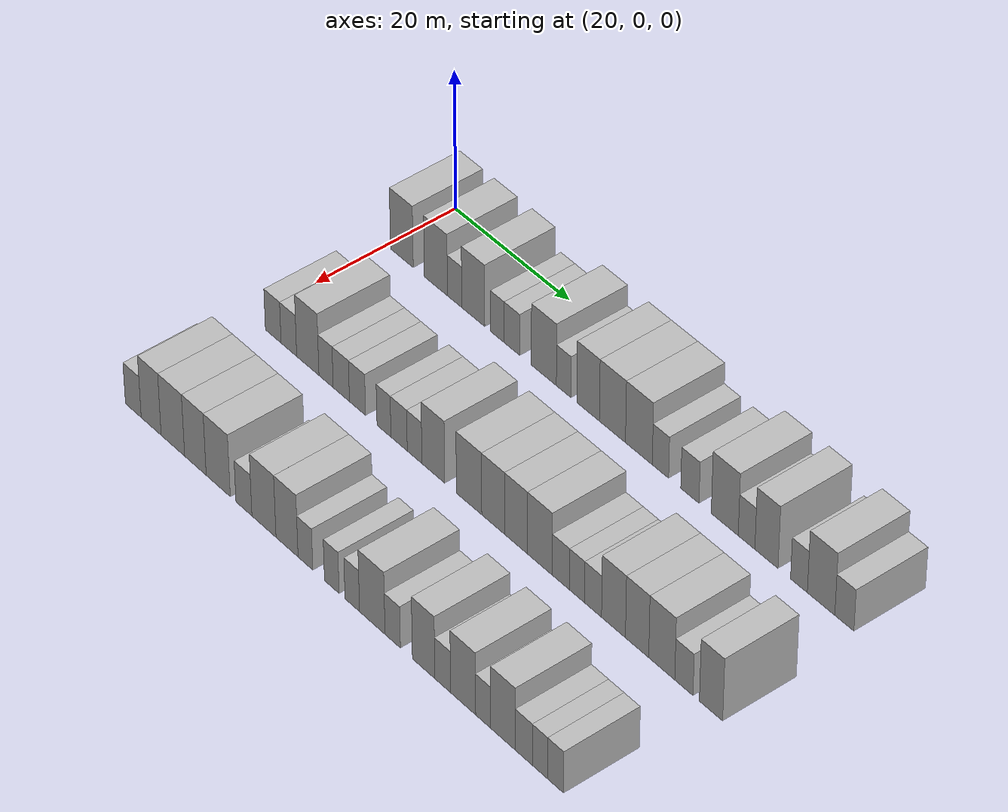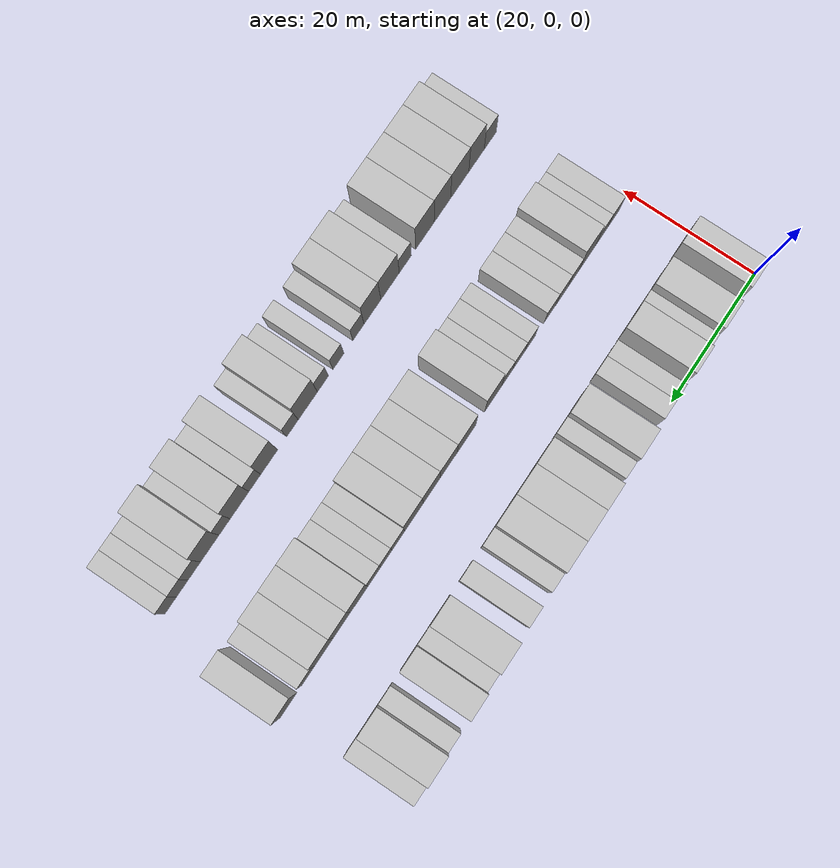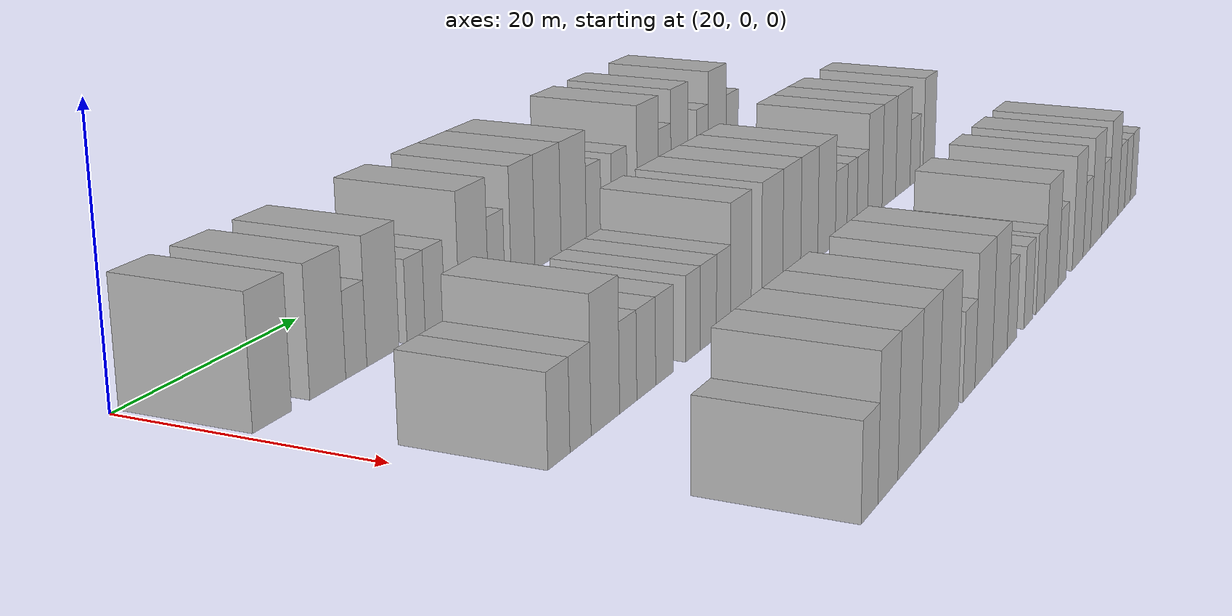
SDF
<sdf version="1.6">
 <world name="default">
  <model name="building_62">
   <static>1</static>
   <pose>25.0000 2.7764 0 0.000000 0.000000 0.000000</pose>
   <link name="link">
    <pose>0 0 4.50 0 0 0</pose>
    <collision name="collision"><geometry><box><size>10.0000 4.0758 9.0000</size></box></geometry></collision>
    <visual name="visual">
     <cast_shadows>0</cast_shadows>
     <geometry><box><size>10.0000 4.0758 9.0000</size></box></geometry>
     <material>
      <script>
       <uri>model://HANNAS_wall/materials/scripts</uri>
       <uri>model://HANNAS_wall/materials/textures</uri>
       <name>vrc/HANNAS_wall</name>
      </script>
     </material>
    </visual>
   </link>
  </model>
  <model name="building_63">
   <static>1</static>
   <pose>25.0000 8.8655 0 0.000000 0.000000 0.000000</pose>
   <link name="link">
    <pose>0 0 4.50 0 0 0</pose>
    <collision name="collision"><geometry><box><size>10.0000 4.1023 9.0000</size></box></geometry></collision>
    <visual name="visual">
     <cast_shadows>0</cast_shadows>
     <geometry><box><size>10.0000 4.1023 9.0000</size></box></geometry>
     <material>
      <script>
       <uri>model://HANNAS_wall/materials/scripts</uri>
       <uri>model://HANNAS_wall/materials/textures</uri>
       <name>vrc/HANNAS_wall</name>
      </script>
     </material>
    </visual>
   </link>
  </model>
  <model name="building_64">
   <static>1</static>
   <pose>25.0000 12.1791 0 0.000000 0.000000 0.000000</pose>
   <link name="link">
    <pose>0 0 3.00 0 0 0</pose>
    <collision name="collision"><geometry><box><size>10.0000 2.5248 6.0000</size></box></geometry></collision>
    <visual name="visual">
     <cast_shadows>0</cast_shadows>
     <geometry><box><size>10.0000 2.5248 6.0000</size></box></geometry>
     <material>
      <script>
       <uri>model://HANNAS_wall/materials/scripts</uri>
       <uri>model://HANNAS_wall/materials/textures</uri>
       <name>vrc/HANNAS_wall</name>
      </script>
     </material>
    </visual>
   </link>
  </model>
  <model name="building_65">
   <static>1</static>
   <pose>25.0000 15.4568 0 0.000000 0.000000 0.000000</pose>
   <link name="link">
    <pose>0 0 4.50 0 0 0</pose>
    <collision name="collision"><geometry><box><size>10.0000 4.0306 9.0000</size></box></geometry></collision>
    <visual name="visual">
     <cast_shadows>0</cast_shadows>
     <geometry><box><size>10.0000 4.0306 9.0000</size></box></geometry>
     <material>
      <script>
       <uri>model://HANNAS_wall/materials/scripts</uri>
       <uri>model://HANNAS_wall/materials/textures</uri>
       <name>vrc/HANNAS_wall</name>
      </script>
     </material>
    </visual>
   </link>
  </model>
  <model name="building_66">
   <static>1</static>
   <pose>25.0000 19.6749 0 0.000000 0.000000 0.000000</pose>
   <link name="link">
    <pose>0 0 3.00 0 0 0</pose>
    <collision name="collision"><geometry><box><size>10.0000 2.4056 6.0000</size></box></geometry></collision>
    <visual name="visual">
     <cast_shadows>0</cast_shadows>
     <geometry><box><size>10.0000 2.4056 6.0000</size></box></geometry>
     <material>
      <script>
       <uri>model://HANNAS_wall/materials/scripts</uri>
       <uri>model://HANNAS_wall/materials/textures</uri>
       <name>vrc/HANNAS_wall</name>
      </script>
     </material>
    </visual>
   </link>
  </model>
  <model name="building_67">
   <static>1</static>
   <pose>25.0000 22.2227 0 0.000000 0.000000 0.000000</pose>
   <link name="link">
    <pose>0 0 3.00 0 0 0</pose>
    <collision name="collision"><geometry><box><size>10.0000 2.6901 6.0000</size></box></geometry></collision>
    <visual name="visual">
     <cast_shadows>0</cast_shadows>
     <geometry><box><size>10.0000 2.6901 6.0000</size></box></geometry>
     <material>
      <script>
       <uri>model://HANNAS_wall/materials/scripts</uri>
       <uri>model://HANNAS_wall/materials/textures</uri>
       <name>vrc/HANNAS_wall</name>
      </script>
     </material>
    </visual>
   </link>
  </model>
  <model name="building_68">
   <static>1</static>
   <pose>25.0000 27.7084 0 0.000000 0.000000 0.000000</pose>
   <link name="link">
    <pose>0 0 4.50 0 0 0</pose>
    <collision name="collision"><geometry><box><size>10.0000 4.2813 9.0000</size></box></geometry></collision>
    <visual name="visual">
     <cast_shadows>0</cast_shadows>
     <geometry><box><size>10.0000 4.2813 9.0000</size></box></geometry>
     <material>
      <script>
       <uri>model://HANNAS_wall/materials/scripts</uri>
       <uri>model://HANNAS_wall/materials/textures</uri>
       <name>vrc/HANNAS_wall</name>
      </script>
     </material>
    </visual>
   </link>
  </model>
  <model name="building_69">
   <static>1</static>
   <pose>25.0000 31.0957 0 0.000000 0.000000 0.000000</pose>
   <link name="link">
    <pose>0 0 3.00 0 0 0</pose>
    <collision name="collision"><geometry><box><size>10.0000 2.4934 6.0000</size></box></geometry></collision>
    <visual name="visual">
     <cast_shadows>0</cast_shadows>
     <geometry><box><size>10.0000 2.4934 6.0000</size></box></geometry>
     <material>
      <script>
       <uri>model://HANNAS_wall/materials/scripts</uri>
       <uri>model://HANNAS_wall/materials/textures</uri>
       <name>vrc/HANNAS_wall</name>
      </script>
     </material>
    </visual>
   </link>
  </model>
  <model name="building_70">
   <static>1</static>
   <pose>25.0000 35.2474 0 0.000000 0.000000 0.000000</pose>
   <link name="link">
    <pose>0 0 4.50 0 0 0</pose>
    <collision name="collision"><geometry><box><size>10.0000 3.8100 9.0000</size></box></geometry></collision>
    <visual name="visual">
     <cast_shadows>0</cast_shadows>
     <geometry><box><size>10.0000 3.8100 9.0000</size></box></geometry>
     <material>
      <script>
       <uri>model://HANNAS_wall/materials/scripts</uri>
       <uri>model://HANNAS_wall/materials/textures</uri>
       <name>vrc/HANNAS_wall</name>
      </script>
     </material>
    </visual>
   </link>
  </model>
  <model name="building_71">
   <static>1</static>
   <pose>25.0000 39.3459 0 0.000000 0.000000 0.000000</pose>
   <link name="link">
    <pose>0 0 4.50 0 0 0</pose>
    <collision name="collision"><geometry><box><size>10.0000 4.3869 9.0000</size></box></geometry></collision>
    <visual name="visual">
     <cast_shadows>0</cast_shadows>
     <geometry><box><size>10.0000 4.3869 9.0000</size></box></geometry>
     <material>
      <script>
       <uri>model://HANNAS_wall/materials/scripts</uri>
       <uri>model://HANNAS_wall/materials/textures</uri>
       <name>vrc/HANNAS_wall</name>
      </script>
     </material>
    </visual>
   </link>
  </model>
  <model name="building_72">
   <static>1</static>
   <pose>25.0000 43.7689 0 0.000000 0.000000 0.000000</pose>
   <link name="link">
    <pose>0 0 4.50 0 0 0</pose>
    <collision name="collision"><geometry><box><size>10.0000 4.4592 9.0000</size></box></geometry></collision>
    <visual name="visual">
     <cast_shadows>0</cast_shadows>
     <geometry><box><size>10.0000 4.4592 9.0000</size></box></geometry>
     <material>
      <script>
       <uri>model://HANNAS_wall/materials/scripts</uri>
       <uri>model://HANNAS_wall/materials/textures</uri>
       <name>vrc/HANNAS_wall</name>
      </script>
     </material>
    </visual>
   </link>
  </model>
  <model name="building_73">
   <static>1</static>
   <pose>25.0000 47.3515 0 0.000000 0.000000 0.000000</pose>
   <link name="link">
    <pose>0 0 3.00 0 0 0</pose>
    <collision name="collision"><geometry><box><size>10.0000 2.7061 6.0000</size></box></geometry></collision>
    <visual name="visual">
     <cast_shadows>0</cast_shadows>
     <geometry><box><size>10.0000 2.7061 6.0000</size></box></geometry>
     <material>
      <script>
       <uri>model://HANNAS_wall/materials/scripts</uri>
       <uri>model://HANNAS_wall/materials/textures</uri>
       <name>vrc/HANNAS_wall</name>
      </script>
     </material>
    </visual>
   </link>
  </model>
  <model name="building_74">
   <static>1</static>
   <pose>25.0000 52.1998 0 0.000000 0.000000 0.000000</pose>
   <link name="link">
    <pose>0 0 3.00 0 0 0</pose>
    <collision name="collision"><geometry><box><size>10.0000 2.9904 6.0000</size></box></geometry></collision>
    <visual name="visual">
     <cast_shadows>0</cast_shadows>
     <geometry><box><size>10.0000 2.9904 6.0000</size></box></geometry>
     <material>
      <script>
       <uri>model://HANNAS_wall/materials/scripts</uri>
       <uri>model://HANNAS_wall/materials/textures</uri>
       <name>vrc/HANNAS_wall</name>
      </script>
     </material>
    </visual>
   </link>
  </model>
  <model name="building_75">
   <static>1</static>
   <pose>25.0000 57.8810 0 0.000000 0.000000 0.000000</pose>
   <link name="link">
    <pose>0 0 4.50 0 0 0</pose>
    <collision name="collision"><geometry><box><size>10.0000 4.3721 9.0000</size></box></geometry></collision>
    <visual name="visual">
     <cast_shadows>0</cast_shadows>
     <geometry><box><size>10.0000 4.3721 9.0000</size></box></geometry>
     <material>
      <script>
       <uri>model://HANNAS_wall/materials/scripts</uri>
       <uri>model://HANNAS_wall/materials/textures</uri>
       <name>vrc/HANNAS_wall</name>
      </script>
     </material>
    </visual>
   </link>
  </model>
  <model name="building_76">
   <static>1</static>
   <pose>25.0000 61.4075 0 0.000000 0.000000 0.000000</pose>
   <link name="link">
    <pose>0 0 3.00 0 0 0</pose>
    <collision name="collision"><geometry><box><size>10.0000 2.6810 6.0000</size></box></geometry></collision>
    <visual name="visual">
     <cast_shadows>0</cast_shadows>
     <geometry><box><size>10.0000 2.6810 6.0000</size></box></geometry>
     <material>
      <script>
       <uri>model://HANNAS_wall/materials/scripts</uri>
       <uri>model://HANNAS_wall/materials/textures</uri>
       <name>vrc/HANNAS_wall</name>
      </script>
     </material>
    </visual>
   </link>
  </model>
  <model name="building_77">
   <static>1</static>
   <pose>25.0000 64.5982 0 0.000000 0.000000 0.000000</pose>
   <link name="link">
    <pose>0 0 4.50 0 0 0</pose>
    <collision name="collision"><geometry><box><size>10.0000 3.7004 9.0000</size></box></geometry></collision>
    <visual name="visual">
     <cast_shadows>0</cast_shadows>
     <geometry><box><size>10.0000 3.7004 9.0000</size></box></geometry>
     <material>
      <script>
       <uri>model://HANNAS_wall/materials/scripts</uri>
       <uri>model://HANNAS_wall/materials/textures</uri>
       <name>vrc/HANNAS_wall</name>
      </script>
     </material>
    </visual>
   </link>
  </model>
  <model name="building_78">
   <static>1</static>
   <pose>25.0000 69.7777 0 0.000000 0.000000 0.000000</pose>
   <link name="link">
    <pose>0 0 3.00 0 0 0</pose>
    <collision name="collision"><geometry><box><size>10.0000 2.6587 6.0000</size></box></geometry></collision>
    <visual name="visual">
     <cast_shadows>0</cast_shadows>
     <geometry><box><size>10.0000 2.6587 6.0000</size></box></geometry>
     <material>
      <script>
       <uri>model://HANNAS_wall/materials/scripts</uri>
       <uri>model://HANNAS_wall/materials/textures</uri>
       <name>vrc/HANNAS_wall</name>
      </script>
     </material>
    </visual>
   </link>
  </model>
  <model name="building_79">
   <static>1</static>
   <pose>25.0000 73.2680 0 0.000000 0.000000 0.000000</pose>
   <link name="link">
    <pose>0 0 4.50 0 0 0</pose>
    <collision name="collision"><geometry><box><size>10.0000 4.3219 9.0000</size></box></geometry></collision>
    <visual name="visual">
     <cast_shadows>0</cast_shadows>
     <geometry><box><size>10.0000 4.3219 9.0000</size></box></geometry>
     <material>
      <script>
       <uri>model://HANNAS_wall/materials/scripts</uri>
       <uri>model://HANNAS_wall/materials/textures</uri>
       <name>vrc/HANNAS_wall</name>
      </script>
     </material>
    </visual>
   </link>
  </model>
  <model name="building_80">
   <static>1</static>
   <pose>25.0000 76.9229 0 0.000000 0.000000 0.000000</pose>
   <link name="link">
    <pose>0 0 3.00 0 0 0</pose>
    <collision name="collision"><geometry><box><size>10.0000 2.9879 6.0000</size></box></geometry></collision>
    <visual name="visual">
     <cast_shadows>0</cast_shadows>
     <geometry><box><size>10.0000 2.9879 6.0000</size></box></geometry>
     <material>
      <script>
       <uri>model://HANNAS_wall/materials/scripts</uri>
       <uri>model://HANNAS_wall/materials/textures</uri>
       <name>vrc/HANNAS_wall</name>
      </script>
     </material>
    </visual>
   </link>
  </model>
  <model name="building_186">
   <static>1</static>
   <pose>44.0000 4.0510 0 0.000000 0.000000 0.000000</pose>
   <link name="link">
    <pose>0 0 3.00 0 0 0</pose>
    <collision name="collision"><geometry><box><size>10.0000 2.8235 6.0000</size></box></geometry></collision>
    <visual name="visual">
     <cast_shadows>0</cast_shadows>
     <geometry><box><size>10.0000 2.8235 6.0000</size></box></geometry>
     <material>
      <script>
       <uri>model://HANNAS_wall/materials/scripts</uri>
       <uri>model://HANNAS_wall/materials/textures</uri>
       <name>vrc/HANNAS_wall</name>
      </script>
     </material>
    </visual>
   </link>
  </model>
  <model name="building_187">
   <static>1</static>
   <pose>44.0000 6.8663 0 0.000000 0.000000 0.000000</pose>
   <link name="link">
    <pose>0 0 3.00 0 0 0</pose>
    <collision name="collision"><geometry><box><size>10.0000 2.8071 6.0000</size></box></geometry></collision>
    <visual name="visual">
     <cast_shadows>0</cast_shadows>
     <geometry><box><size>10.0000 2.8071 6.0000</size></box></geometry>
     <material>
      <script>
       <uri>model://HANNAS_wall/materials/scripts</uri>
       <uri>model://HANNAS_wall/materials/textures</uri>
       <name>vrc/HANNAS_wall</name>
      </script>
     </material>
    </visual>
   </link>
  </model>
  <model name="building_188">
   <static>1</static>
   <pose>44.0000 10.2616 0 0.000000 0.000000 0.000000</pose>
   <link name="link">
    <pose>0 0 4.50 0 0 0</pose>
    <collision name="collision"><geometry><box><size>10.0000 3.9836 9.0000</size></box></geometry></collision>
    <visual name="visual">
     <cast_shadows>0</cast_shadows>
     <geometry><box><size>10.0000 3.9836 9.0000</size></box></geometry>
     <material>
      <script>
       <uri>model://HANNAS_wall/materials/scripts</uri>
       <uri>model://HANNAS_wall/materials/textures</uri>
       <name>vrc/HANNAS_wall</name>
      </script>
     </material>
    </visual>
   </link>
  </model>
  <model name="building_189">
   <static>1</static>
   <pose>44.0000 13.5170 0 0.000000 0.000000 0.000000</pose>
   <link name="link">
    <pose>0 0 3.00 0 0 0</pose>
    <collision name="collision"><geometry><box><size>10.0000 2.5271 6.0000</size></box></geometry></collision>
    <visual name="visual">
     <cast_shadows>0</cast_shadows>
     <geometry><box><size>10.0000 2.5271 6.0000</size></box></geometry>
     <material>
      <script>
       <uri>model://HANNAS_wall/materials/scripts</uri>
       <uri>model://HANNAS_wall/materials/textures</uri>
       <name>vrc/HANNAS_wall</name>
      </script>
     </material>
    </visual>
   </link>
  </model>
  <model name="building_190">
   <static>1</static>
   <pose>44.0000 16.2181 0 0.000000 0.000000 0.000000</pose>
   <link name="link">
    <pose>0 0 3.00 0 0 0</pose>
    <collision name="collision"><geometry><box><size>10.0000 2.8750 6.0000</size></box></geometry></collision>
    <visual name="visual">
     <cast_shadows>0</cast_shadows>
     <geometry><box><size>10.0000 2.8750 6.0000</size></box></geometry>
     <material>
      <script>
       <uri>model://HANNAS_wall/materials/scripts</uri>
       <uri>model://HANNAS_wall/materials/textures</uri>
       <name>vrc/HANNAS_wall</name>
      </script>
     </material>
    </visual>
   </link>
  </model>
  <model name="building_191">
   <static>1</static>
   <pose>44.0000 19.0745 0 0.000000 0.000000 0.000000</pose>
   <link name="link">
    <pose>0 0 3.00 0 0 0</pose>
    <collision name="collision"><geometry><box><size>10.0000 2.8378 6.0000</size></box></geometry></collision>
    <visual name="visual">
     <cast_shadows>0</cast_shadows>
     <geometry><box><size>10.0000 2.8378 6.0000</size></box></geometry>
     <material>
      <script>
       <uri>model://HANNAS_wall/materials/scripts</uri>
       <uri>model://HANNAS_wall/materials/textures</uri>
       <name>vrc/HANNAS_wall</name>
      </script>
     </material>
    </visual>
   </link>
  </model>
  <model name="building_192">
   <static>1</static>
   <pose>44.0000 23.7093 0 0.000000 0.000000 0.000000</pose>
   <link name="link">
    <pose>0 0 3.00 0 0 0</pose>
    <collision name="collision"><geometry><box><size>10.0000 2.4318 6.0000</size></box></geometry></collision>
    <visual name="visual">
     <cast_shadows>0</cast_shadows>
     <geometry><box><size>10.0000 2.4318 6.0000</size></box></geometry>
     <material>
      <script>
       <uri>model://HANNAS_wall/materials/scripts</uri>
       <uri>model://HANNAS_wall/materials/textures</uri>
       <name>vrc/HANNAS_wall</name>
      </script>
     </material>
    </visual>
   </link>
  </model>
  <model name="building_193">
   <static>1</static>
   <pose>44.0000 26.3381 0 0.000000 0.000000 0.000000</pose>
   <link name="link">
    <pose>0 0 3.00 0 0 0</pose>
    <collision name="collision"><geometry><box><size>10.0000 2.8258 6.0000</size></box></geometry></collision>
    <visual name="visual">
     <cast_shadows>0</cast_shadows>
     <geometry><box><size>10.0000 2.8258 6.0000</size></box></geometry>
     <material>
      <script>
       <uri>model://HANNAS_wall/materials/scripts</uri>
       <uri>model://HANNAS_wall/materials/textures</uri>
       <name>vrc/HANNAS_wall</name>
      </script>
     </material>
    </visual>
   </link>
  </model>
  <model name="building_194">
   <static>1</static>
   <pose>44.0000 29.0210 0 0.000000 0.000000 0.000000</pose>
   <link name="link">
    <pose>0 0 3.00 0 0 0</pose>
    <collision name="collision"><geometry><box><size>10.0000 2.5401 6.0000</size></box></geometry></collision>
    <visual name="visual">
     <cast_shadows>0</cast_shadows>
     <geometry><box><size>10.0000 2.5401 6.0000</size></box></geometry>
     <material>
      <script>
       <uri>model://HANNAS_wall/materials/scripts</uri>
       <uri>model://HANNAS_wall/materials/textures</uri>
       <name>vrc/HANNAS_wall</name>
      </script>
     </material>
    </visual>
   </link>
  </model>
  <model name="building_195">
   <static>1</static>
   <pose>44.0000 32.2441 0 0.000000 0.000000 0.000000</pose>
   <link name="link">
    <pose>0 0 4.50 0 0 0</pose>
    <collision name="collision"><geometry><box><size>10.0000 3.9061 9.0000</size></box></geometry></collision>
    <visual name="visual">
     <cast_shadows>0</cast_shadows>
     <geometry><box><size>10.0000 3.9061 9.0000</size></box></geometry>
     <material>
      <script>
       <uri>model://HANNAS_wall/materials/scripts</uri>
       <uri>model://HANNAS_wall/materials/textures</uri>
       <name>vrc/HANNAS_wall</name>
      </script>
     </material>
    </visual>
   </link>
  </model>
  <model name="building_196">
   <static>1</static>
   <pose>44.0000 38.3375 0 0.000000 0.000000 0.000000</pose>
   <link name="link">
    <pose>0 0 4.50 0 0 0</pose>
    <collision name="collision"><geometry><box><size>10.0000 4.2806 9.0000</size></box></geometry></collision>
    <visual name="visual">
     <cast_shadows>0</cast_shadows>
     <geometry><box><size>10.0000 4.2806 9.0000</size></box></geometry>
     <material>
      <script>
       <uri>model://HANNAS_wall/materials/scripts</uri>
       <uri>model://HANNAS_wall/materials/textures</uri>
       <name>vrc/HANNAS_wall</name>
      </script>
     </material>
    </visual>
   </link>
  </model>
  <model name="building_197">
   <static>1</static>
   <pose>44.0000 42.4011 0 0.000000 0.000000 0.000000</pose>
   <link name="link">
    <pose>0 0 4.50 0 0 0</pose>
    <collision name="collision"><geometry><box><size>10.0000 3.8466 9.0000</size></box></geometry></collision>
    <visual name="visual">
     <cast_shadows>0</cast_shadows>
     <geometry><box><size>10.0000 3.8466 9.0000</size></box></geometry>
     <material>
      <script>
       <uri>model://HANNAS_wall/materials/scripts</uri>
       <uri>model://HANNAS_wall/materials/textures</uri>
       <name>vrc/HANNAS_wall</name>
      </script>
     </material>
    </visual>
   </link>
  </model>
  <model name="building_198">
   <static>1</static>
   <pose>44.0000 46.2321 0 0.000000 0.000000 0.000000</pose>
   <link name="link">
    <pose>0 0 4.50 0 0 0</pose>
    <collision name="collision"><geometry><box><size>10.0000 3.8154 9.0000</size></box></geometry></collision>
    <visual name="visual">
     <cast_shadows>0</cast_shadows>
     <geometry><box><size>10.0000 3.8154 9.0000</size></box></geometry>
     <material>
      <script>
       <uri>model://HANNAS_wall/materials/scripts</uri>
       <uri>model://HANNAS_wall/materials/textures</uri>
       <name>vrc/HANNAS_wall</name>
      </script>
     </material>
    </visual>
   </link>
  </model>
  <model name="building_199">
   <static>1</static>
   <pose>44.0000 50.1903 0 0.000000 0.000000 0.000000</pose>
   <link name="link">
    <pose>0 0 4.50 0 0 0</pose>
    <collision name="collision"><geometry><box><size>10.0000 4.1008 9.0000</size></box></geometry></collision>
    <visual name="visual">
     <cast_shadows>0</cast_shadows>
     <geometry><box><size>10.0000 4.1008 9.0000</size></box></geometry>
     <material>
      <script>
       <uri>model://HANNAS_wall/materials/scripts</uri>
       <uri>model://HANNAS_wall/materials/textures</uri>
       <name>vrc/HANNAS_wall</name>
      </script>
     </material>
    </visual>
   </link>
  </model>
  <model name="building_200">
   <static>1</static>
   <pose>44.0000 53.6527 0 0.000000 0.000000 0.000000</pose>
   <link name="link">
    <pose>0 0 3.00 0 0 0</pose>
    <collision name="collision"><geometry><box><size>10.0000 2.8241 6.0000</size></box></geometry></collision>
    <visual name="visual">
     <cast_shadows>0</cast_shadows>
     <geometry><box><size>10.0000 2.8241 6.0000</size></box></geometry>
     <material>
      <script>
       <uri>model://HANNAS_wall/materials/scripts</uri>
       <uri>model://HANNAS_wall/materials/textures</uri>
       <name>vrc/HANNAS_wall</name>
      </script>
     </material>
    </visual>
   </link>
  </model>
  <model name="building_201">
   <static>1</static>
   <pose>44.0000 56.2952 0 0.000000 0.000000 0.000000</pose>
   <link name="link">
    <pose>0 0 3.00 0 0 0</pose>
    <collision name="collision"><geometry><box><size>10.0000 2.4609 6.0000</size></box></geometry></collision>
    <visual name="visual">
     <cast_shadows>0</cast_shadows>
     <geometry><box><size>10.0000 2.4609 6.0000</size></box></geometry>
     <material>
      <script>
       <uri>model://HANNAS_wall/materials/scripts</uri>
       <uri>model://HANNAS_wall/materials/textures</uri>
       <name>vrc/HANNAS_wall</name>
      </script>
     </material>
    </visual>
   </link>
  </model>
  <model name="building_202">
   <static>1</static>
   <pose>44.0000 58.9181 0 0.000000 0.000000 0.000000</pose>
   <link name="link">
    <pose>0 0 3.00 0 0 0</pose>
    <collision name="collision"><geometry><box><size>10.0000 2.7849 6.0000</size></box></geometry></collision>
    <visual name="visual">
     <cast_shadows>0</cast_shadows>
     <geometry><box><size>10.0000 2.7849 6.0000</size></box></geometry>
     <material>
      <script>
       <uri>model://HANNAS_wall/materials/scripts</uri>
       <uri>model://HANNAS_wall/materials/textures</uri>
       <name>vrc/HANNAS_wall</name>
      </script>
     </material>
    </visual>
   </link>
  </model>
  <model name="building_203">
   <static>1</static>
   <pose>44.0000 62.2452 0 0.000000 0.000000 0.000000</pose>
   <link name="link">
    <pose>0 0 4.50 0 0 0</pose>
    <collision name="collision"><geometry><box><size>10.0000 3.8692 9.0000</size></box></geometry></collision>
    <visual name="visual">
     <cast_shadows>0</cast_shadows>
     <geometry><box><size>10.0000 3.8692 9.0000</size></box></geometry>
     <material>
      <script>
       <uri>model://HANNAS_wall/materials/scripts</uri>
       <uri>model://HANNAS_wall/materials/textures</uri>
       <name>vrc/HANNAS_wall</name>
      </script>
     </material>
    </visual>
   </link>
  </model>
  <model name="building_204">
   <static>1</static>
   <pose>44.0000 66.0478 0 0.000000 0.000000 0.000000</pose>
   <link name="link">
    <pose>0 0 4.50 0 0 0</pose>
    <collision name="collision"><geometry><box><size>10.0000 3.7361 9.0000</size></box></geometry></collision>
    <visual name="visual">
     <cast_shadows>0</cast_shadows>
     <geometry><box><size>10.0000 3.7361 9.0000</size></box></geometry>
     <material>
      <script>
       <uri>model://HANNAS_wall/materials/scripts</uri>
       <uri>model://HANNAS_wall/materials/textures</uri>
       <name>vrc/HANNAS_wall</name>
      </script>
     </material>
    </visual>
   </link>
  </model>
  <model name="building_205">
   <static>1</static>
   <pose>44.0000 69.9916 0 0.000000 0.000000 0.000000</pose>
   <link name="link">
    <pose>0 0 4.50 0 0 0</pose>
    <collision name="collision"><geometry><box><size>10.0000 4.1514 9.0000</size></box></geometry></collision>
    <visual name="visual">
     <cast_shadows>0</cast_shadows>
     <geometry><box><size>10.0000 4.1514 9.0000</size></box></geometry>
     <material>
      <script>
       <uri>model://HANNAS_wall/materials/scripts</uri>
       <uri>model://HANNAS_wall/materials/textures</uri>
       <name>vrc/HANNAS_wall</name>
      </script>
     </material>
    </visual>
   </link>
  </model>
  <model name="building_206">
   <static>1</static>
   <pose>44.0000 73.5142 0 0.000000 0.000000 0.000000</pose>
   <link name="link">
    <pose>0 0 3.00 0 0 0</pose>
    <collision name="collision"><geometry><box><size>10.0000 2.8937 6.0000</size></box></geometry></collision>
    <visual name="visual">
     <cast_shadows>0</cast_shadows>
     <geometry><box><size>10.0000 2.8937 6.0000</size></box></geometry>
     <material>
      <script>
       <uri>model://HANNAS_wall/materials/scripts</uri>
       <uri>model://HANNAS_wall/materials/textures</uri>
       <name>vrc/HANNAS_wall</name>
      </script>
     </material>
    </visual>
   </link>
  </model>
  <model name="building_207">
   <static>1</static>
   <pose>44.0000 77.7868 0 0.000000 0.000000 0.000000</pose>
   <link name="link">
    <pose>0 0 4.50 0 0 0</pose>
    <collision name="collision"><geometry><box><size>10.0000 3.6514 9.0000</size></box></geometry></collision>
    <visual name="visual">
     <cast_shadows>0</cast_shadows>
     <geometry><box><size>10.0000 3.6514 9.0000</size></box></geometry>
     <material>
      <script>
       <uri>model://HANNAS_wall/materials/scripts</uri>
       <uri>model://HANNAS_wall/materials/textures</uri>
       <name>vrc/HANNAS_wall</name>
      </script>
     </material>
    </visual>
   </link>
  </model>
  <model name="building_314">
   <static>1</static>
   <pose>63.0000 4.0176 0 0.000000 0.000000 0.000000</pose>
   <link name="link">
    <pose>0 0 3.00 0 0 0</pose>
    <collision name="collision"><geometry><box><size>10.0000 2.8701 6.0000</size></box></geometry></collision>
    <visual name="visual">
     <cast_shadows>0</cast_shadows>
     <geometry><box><size>10.0000 2.8701 6.0000</size></box></geometry>
     <material>
      <script>
       <uri>model://HANNAS_wall/materials/scripts</uri>
       <uri>model://HANNAS_wall/materials/textures</uri>
       <name>vrc/HANNAS_wall</name>
      </script>
     </material>
    </visual>
   </link>
  </model>
  <model name="building_315">
   <static>1</static>
   <pose>63.0000 7.2606 0 0.000000 0.000000 0.000000</pose>
   <link name="link">
    <pose>0 0 4.50 0 0 0</pose>
    <collision name="collision"><geometry><box><size>10.0000 3.6160 9.0000</size></box></geometry></collision>
    <visual name="visual">
     <cast_shadows>0</cast_shadows>
     <geometry><box><size>10.0000 3.6160 9.0000</size></box></geometry>
     <material>
      <script>
       <uri>model://HANNAS_wall/materials/scripts</uri>
       <uri>model://HANNAS_wall/materials/textures</uri>
       <name>vrc/HANNAS_wall</name>
      </script>
     </material>
    </visual>
   </link>
  </model>
  <model name="building_316">
   <static>1</static>
   <pose>63.0000 11.1840 0 0.000000 0.000000 0.000000</pose>
   <link name="link">
    <pose>0 0 4.50 0 0 0</pose>
    <collision name="collision"><geometry><box><size>10.0000 4.2306 9.0000</size></box></geometry></collision>
    <visual name="visual">
     <cast_shadows>0</cast_shadows>
     <geometry><box><size>10.0000 4.2306 9.0000</size></box></geometry>
     <material>
      <script>
       <uri>model://HANNAS_wall/materials/scripts</uri>
       <uri>model://HANNAS_wall/materials/textures</uri>
       <name>vrc/HANNAS_wall</name>
      </script>
     </material>
    </visual>
   </link>
  </model>
  <model name="building_317">
   <static>1</static>
   <pose>63.0000 15.2242 0 0.000000 0.000000 0.000000</pose>
   <link name="link">
    <pose>0 0 4.50 0 0 0</pose>
    <collision name="collision"><geometry><box><size>10.0000 3.8499 9.0000</size></box></geometry></collision>
    <visual name="visual">
     <cast_shadows>0</cast_shadows>
     <geometry><box><size>10.0000 3.8499 9.0000</size></box></geometry>
     <material>
      <script>
       <uri>model://HANNAS_wall/materials/scripts</uri>
       <uri>model://HANNAS_wall/materials/textures</uri>
       <name>vrc/HANNAS_wall</name>
      </script>
     </material>
    </visual>
   </link>
  </model>
  <model name="building_318">
   <static>1</static>
   <pose>63.0000 19.2848 0 0.000000 0.000000 0.000000</pose>
   <link name="link">
    <pose>0 0 4.50 0 0 0</pose>
    <collision name="collision"><geometry><box><size>10.0000 4.2713 9.0000</size></box></geometry></collision>
    <visual name="visual">
     <cast_shadows>0</cast_shadows>
     <geometry><box><size>10.0000 4.2713 9.0000</size></box></geometry>
     <material>
      <script>
       <uri>model://HANNAS_wall/materials/scripts</uri>
       <uri>model://HANNAS_wall/materials/textures</uri>
       <name>vrc/HANNAS_wall</name>
      </script>
     </material>
    </visual>
   </link>
  </model>
  <model name="building_319">
   <static>1</static>
   <pose>63.0000 23.8218 0 0.000000 0.000000 0.000000</pose>
   <link name="link">
    <pose>0 0 3.00 0 0 0</pose>
    <collision name="collision"><geometry><box><size>10.0000 2.8026 6.0000</size></box></geometry></collision>
    <visual name="visual">
     <cast_shadows>0</cast_shadows>
     <geometry><box><size>10.0000 2.8026 6.0000</size></box></geometry>
     <material>
      <script>
       <uri>model://HANNAS_wall/materials/scripts</uri>
       <uri>model://HANNAS_wall/materials/textures</uri>
       <name>vrc/HANNAS_wall</name>
      </script>
     </material>
    </visual>
   </link>
  </model>
  <model name="building_320">
   <static>1</static>
   <pose>63.0000 27.3267 0 0.000000 0.000000 0.000000</pose>
   <link name="link">
    <pose>0 0 4.50 0 0 0</pose>
    <collision name="collision"><geometry><box><size>10.0000 4.2073 9.0000</size></box></geometry></collision>
    <visual name="visual">
     <cast_shadows>0</cast_shadows>
     <geometry><box><size>10.0000 4.2073 9.0000</size></box></geometry>
     <material>
      <script>
       <uri>model://HANNAS_wall/materials/scripts</uri>
       <uri>model://HANNAS_wall/materials/textures</uri>
       <name>vrc/HANNAS_wall</name>
      </script>
     </material>
    </visual>
   </link>
  </model>
  <model name="building_321">
   <static>1</static>
   <pose>63.0000 31.3395 0 0.000000 0.000000 0.000000</pose>
   <link name="link">
    <pose>0 0 4.50 0 0 0</pose>
    <collision name="collision"><geometry><box><size>10.0000 3.8182 9.0000</size></box></geometry></collision>
    <visual name="visual">
     <cast_shadows>0</cast_shadows>
     <geometry><box><size>10.0000 3.8182 9.0000</size></box></geometry>
     <material>
      <script>
       <uri>model://HANNAS_wall/materials/scripts</uri>
       <uri>model://HANNAS_wall/materials/textures</uri>
       <name>vrc/HANNAS_wall</name>
      </script>
     </material>
    </visual>
   </link>
  </model>
  <model name="building_322">
   <static>1</static>
   <pose>63.0000 34.5202 0 0.000000 0.000000 0.000000</pose>
   <link name="link">
    <pose>0 0 3.00 0 0 0</pose>
    <collision name="collision"><geometry><box><size>10.0000 2.5432 6.0000</size></box></geometry></collision>
    <visual name="visual">
     <cast_shadows>0</cast_shadows>
     <geometry><box><size>10.0000 2.5432 6.0000</size></box></geometry>
     <material>
      <script>
       <uri>model://HANNAS_wall/materials/scripts</uri>
       <uri>model://HANNAS_wall/materials/textures</uri>
       <name>vrc/HANNAS_wall</name>
      </script>
     </material>
    </visual>
   </link>
  </model>
  <model name="building_323">
   <static>1</static>
   <pose>63.0000 39.0403 0 0.000000 0.000000 0.000000</pose>
   <link name="link">
    <pose>0 0 3.00 0 0 0</pose>
    <collision name="collision"><geometry><box><size>10.0000 2.4970 6.0000</size></box></geometry></collision>
    <visual name="visual">
     <cast_shadows>0</cast_shadows>
     <geometry><box><size>10.0000 2.4970 6.0000</size></box></geometry>
     <material>
      <script>
       <uri>model://HANNAS_wall/materials/scripts</uri>
       <uri>model://HANNAS_wall/materials/textures</uri>
       <name>vrc/HANNAS_wall</name>
      </script>
     </material>
    </visual>
   </link>
  </model>
  <model name="building_324">
   <static>1</static>
   <pose>63.0000 42.5243 0 0.000000 0.000000 0.000000</pose>
   <link name="link">
    <pose>0 0 3.00 0 0 0</pose>
    <collision name="collision"><geometry><box><size>10.0000 2.4710 6.0000</size></box></geometry></collision>
    <visual name="visual">
     <cast_shadows>0</cast_shadows>
     <geometry><box><size>10.0000 2.4710 6.0000</size></box></geometry>
     <material>
      <script>
       <uri>model://HANNAS_wall/materials/scripts</uri>
       <uri>model://HANNAS_wall/materials/textures</uri>
       <name>vrc/HANNAS_wall</name>
      </script>
     </material>
    </visual>
   </link>
  </model>
  <model name="building_325">
   <static>1</static>
   <pose>63.0000 45.9037 0 0.000000 0.000000 0.000000</pose>
   <link name="link">
    <pose>0 0 4.50 0 0 0</pose>
    <collision name="collision"><geometry><box><size>10.0000 4.2879 9.0000</size></box></geometry></collision>
    <visual name="visual">
     <cast_shadows>0</cast_shadows>
     <geometry><box><size>10.0000 4.2879 9.0000</size></box></geometry>
     <material>
      <script>
       <uri>model://HANNAS_wall/materials/scripts</uri>
       <uri>model://HANNAS_wall/materials/textures</uri>
       <name>vrc/HANNAS_wall</name>
      </script>
     </material>
    </visual>
   </link>
  </model>
  <model name="building_326">
   <static>1</static>
   <pose>63.0000 49.3329 0 0.000000 0.000000 0.000000</pose>
   <link name="link">
    <pose>0 0 3.00 0 0 0</pose>
    <collision name="collision"><geometry><box><size>10.0000 2.5705 6.0000</size></box></geometry></collision>
    <visual name="visual">
     <cast_shadows>0</cast_shadows>
     <geometry><box><size>10.0000 2.5705 6.0000</size></box></geometry>
     <material>
      <script>
       <uri>model://HANNAS_wall/materials/scripts</uri>
       <uri>model://HANNAS_wall/materials/textures</uri>
       <name>vrc/HANNAS_wall</name>
      </script>
     </material>
    </visual>
   </link>
  </model>
  <model name="building_327">
   <static>1</static>
   <pose>63.0000 54.4818 0 0.000000 0.000000 0.000000</pose>
   <link name="link">
    <pose>0 0 4.50 0 0 0</pose>
    <collision name="collision"><geometry><box><size>10.0000 3.7273 9.0000</size></box></geometry></collision>
    <visual name="visual">
     <cast_shadows>0</cast_shadows>
     <geometry><box><size>10.0000 3.7273 9.0000</size></box></geometry>
     <material>
      <script>
       <uri>model://HANNAS_wall/materials/scripts</uri>
       <uri>model://HANNAS_wall/materials/textures</uri>
       <name>vrc/HANNAS_wall</name>
      </script>
     </material>
    </visual>
   </link>
  </model>
  <model name="building_328">
   <static>1</static>
   <pose>63.0000 57.6375 0 0.000000 0.000000 0.000000</pose>
   <link name="link">
    <pose>0 0 3.00 0 0 0</pose>
    <collision name="collision"><geometry><box><size>10.0000 2.5842 6.0000</size></box></geometry></collision>
    <visual name="visual">
     <cast_shadows>0</cast_shadows>
     <geometry><box><size>10.0000 2.5842 6.0000</size></box></geometry>
     <material>
      <script>
       <uri>model://HANNAS_wall/materials/scripts</uri>
       <uri>model://HANNAS_wall/materials/textures</uri>
       <name>vrc/HANNAS_wall</name>
      </script>
     </material>
    </visual>
   </link>
  </model>
  <model name="building_329">
   <static>1</static>
   <pose>63.0000 60.9789 0 0.000000 0.000000 0.000000</pose>
   <link name="link">
    <pose>0 0 4.50 0 0 0</pose>
    <collision name="collision"><geometry><box><size>10.0000 4.0987 9.0000</size></box></geometry></collision>
    <visual name="visual">
     <cast_shadows>0</cast_shadows>
     <geometry><box><size>10.0000 4.0987 9.0000</size></box></geometry>
     <material>
      <script>
       <uri>model://HANNAS_wall/materials/scripts</uri>
       <uri>model://HANNAS_wall/materials/textures</uri>
       <name>vrc/HANNAS_wall</name>
      </script>
     </material>
    </visual>
   </link>
  </model>
  <model name="building_330">
   <static>1</static>
   <pose>63.0000 64.2439 0 0.000000 0.000000 0.000000</pose>
   <link name="link">
    <pose>0 0 3.00 0 0 0</pose>
    <collision name="collision"><geometry><box><size>10.0000 2.4312 6.0000</size></box></geometry></collision>
    <visual name="visual">
     <cast_shadows>0</cast_shadows>
     <geometry><box><size>10.0000 2.4312 6.0000</size></box></geometry>
     <material>
      <script>
       <uri>model://HANNAS_wall/materials/scripts</uri>
       <uri>model://HANNAS_wall/materials/textures</uri>
       <name>vrc/HANNAS_wall</name>
      </script>
     </material>
    </visual>
   </link>
  </model>
  <model name="building_331">
   <static>1</static>
   <pose>63.0000 67.4491 0 0.000000 0.000000 0.000000</pose>
   <link name="link">
    <pose>0 0 4.50 0 0 0</pose>
    <collision name="collision"><geometry><box><size>10.0000 3.9792 9.0000</size></box></geometry></collision>
    <visual name="visual">
     <cast_shadows>0</cast_shadows>
     <geometry><box><size>10.0000 3.9792 9.0000</size></box></geometry>
     <material>
      <script>
       <uri>model://HANNAS_wall/materials/scripts</uri>
       <uri>model://HANNAS_wall/materials/textures</uri>
       <name>vrc/HANNAS_wall</name>
      </script>
     </material>
    </visual>
   </link>
  </model>
  <model name="building_332">
   <static>1</static>
   <pose>63.0000 70.7961 0 0.000000 0.000000 0.000000</pose>
   <link name="link">
    <pose>0 0 3.00 0 0 0</pose>
    <collision name="collision"><geometry><box><size>10.0000 2.7147 6.0000</size></box></geometry></collision>
    <visual name="visual">
     <cast_shadows>0</cast_shadows>
     <geometry><box><size>10.0000 2.7147 6.0000</size></box></geometry>
     <material>
      <script>
       <uri>model://HANNAS_wall/materials/scripts</uri>
       <uri>model://HANNAS_wall/materials/textures</uri>
       <name>vrc/HANNAS_wall</name>
      </script>
     </material>
    </visual>
   </link>
  </model>
  <model name="building_333">
   <static>1</static>
   <pose>63.0000 73.3758 0 0.000000 0.000000 0.000000</pose>
   <link name="link">
    <pose>0 0 3.00 0 0 0</pose>
    <collision name="collision"><geometry><box><size>10.0000 2.4447 6.0000</size></box></geometry></collision>
    <visual name="visual">
     <cast_shadows>0</cast_shadows>
     <geometry><box><size>10.0000 2.4447 6.0000</size></box></geometry>
     <material>
      <script>
       <uri>model://HANNAS_wall/materials/scripts</uri>
       <uri>model://HANNAS_wall/materials/textures</uri>
       <name>vrc/HANNAS_wall</name>
      </script>
     </material>
    </visual>
   </link>
  </model>
  <model name="building_334">
   <static>1</static>
   <pose>63.0000 75.8628 0 0.000000 0.000000 0.000000</pose>
   <link name="link">
    <pose>0 0 3.00 0 0 0</pose>
    <collision name="collision"><geometry><box><size>10.0000 2.5293 6.0000</size></box></geometry></collision>
    <visual name="visual">
     <cast_shadows>0</cast_shadows>
     <geometry><box><size>10.0000 2.5293 6.0000</size></box></geometry>
     <material>
      <script>
       <uri>model://HANNAS_wall/materials/scripts</uri>
       <uri>model://HANNAS_wall/materials/textures</uri>
       <name>vrc/HANNAS_wall</name>
      </script>
     </material>
    </visual>
   </link>
  </model>
 </world>
</sdf>
